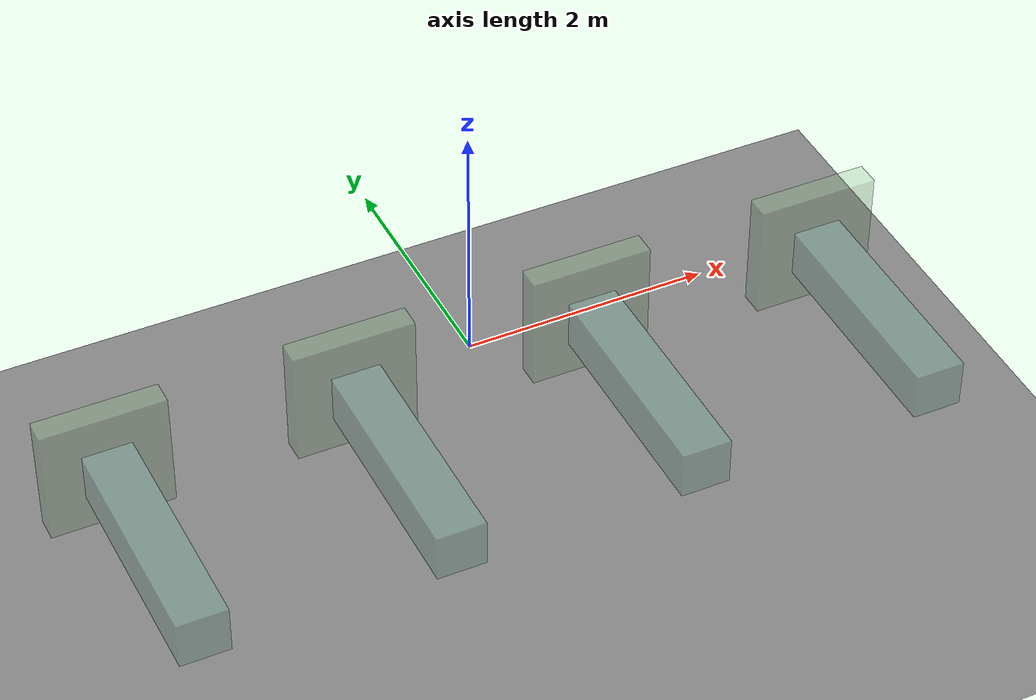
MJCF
<mujoco>
  <option solver="CG" iterations="8">
    <flag contact="disable"/>
  </option>

  <default>
    <default class="static">
      <geom size=".5 .1 .5" rgba=".5 .7 .5 .3"/>
    </default>
    <default class="free">
      <geom type="box" size=".2" fromto="0 0 0 0 -2 0" rgba=".4 .7 .6 .3"/>
    </default>
  </default>

  <worldbody>
    <geom pos="0 0 -2" type="plane" size="10 10 .01"/>
    <light pos="0 0 20"/>

    <body name="box1" pos="-3 0 0">
      <geom type="box" class="static"/>
    </body>
    <body name="beam1" pos="-3 0 0">
      <freejoint/>
      <geom class="free"/>
    </body>

    <body name="box2" pos="-1 0 0">
      <geom type="box" class="static"/>
    </body>
    <body name="beam2" pos="-1 0 0">
      <freejoint/>
      <geom class="free"/>
    </body>

    <body name="box3" pos="1 0 0">
      <geom type="box" class="static"/>
    </body>
    <body name="beam3" pos="1 0 0">
      <freejoint/>
      <geom class="free"/>
    </body>

    <body name="box4" pos="3 0 0">
      <geom type="box" class="static"/>
    </body>
    <body name="beam4" pos="3 0 0">
      <freejoint/>
      <geom class="free"/>
    </body>
  </worldbody>

  <equality>
    <connect name="connect anchor"        body1="box1" body2="beam1" anchor="0 0 -1" />
    <weld name="weld anchor weak torques" body1="box2" body2="beam2" torquescale="0.002" anchor="0 -2 0"/>
    <weld name="weld relpose"             body1="box3" body2="beam3" relpose="0 0 0 1 -.3 0 0"/>
    <weld name="weld relpose+anchor"      body1="box4" body2="beam4" relpose="0 0 0 1 -.3 0 0" anchor="0 0 -1"/>
  </equality>
</mujoco>
